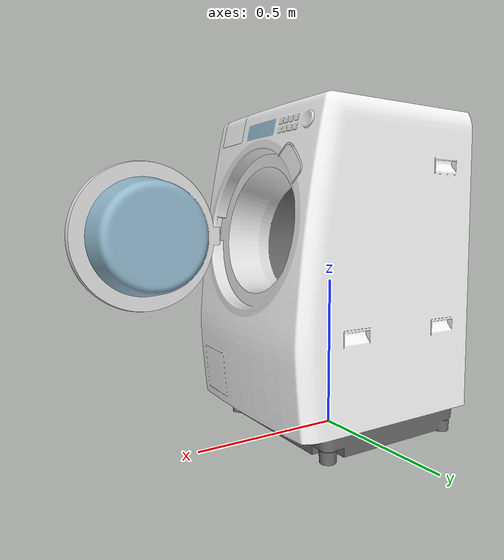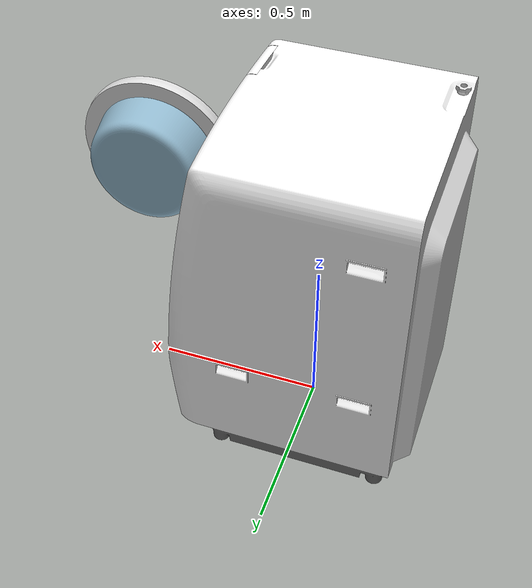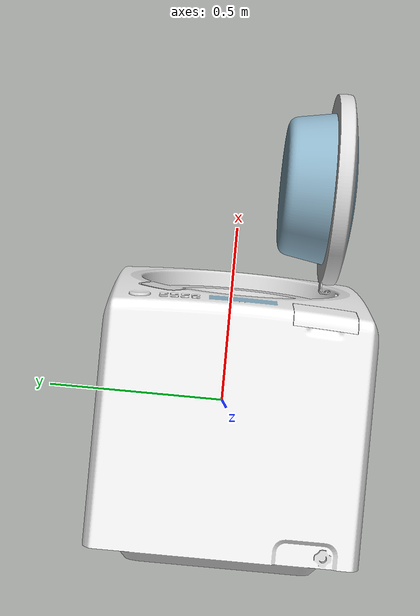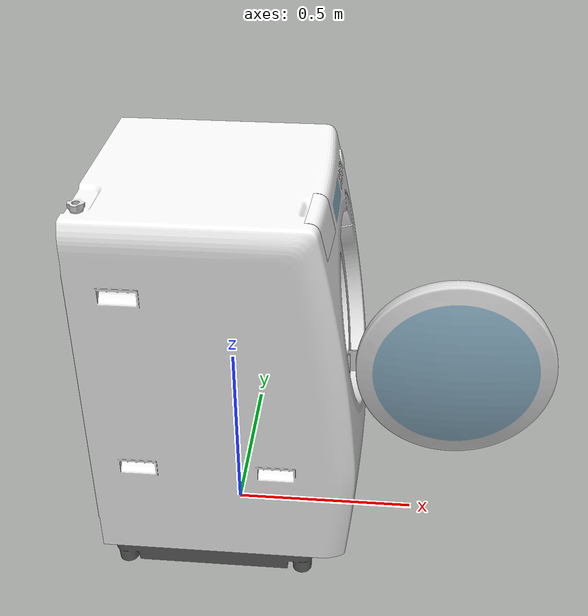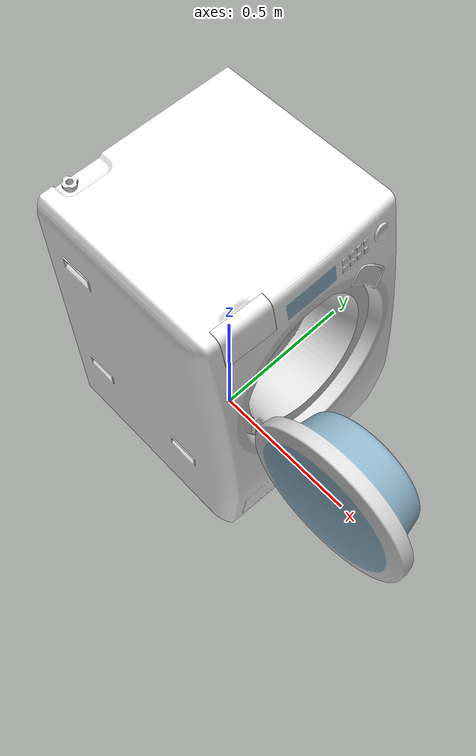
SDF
<?xml version="1.0" ?>
<sdf version="1.8">
  <model name="washing_machine">

    <!-- ── Body link ─────────────────────────────────────────────────────── -->
    <link name="body">
      <pose>0 0 0 0 0 0</pose>

      <inertial>
        <!-- Heavy appliance — effectively static once placed -->
        <mass>60.0</mass>
        <inertia>
          <ixx>8.0</ixx> <ixy>0</ixy> <ixz>0</ixz>
          <iyy>6.0</iyy> <iyz>0</iyz>
          <izz>5.0</izz>
        </inertia>
      </inertial>

      <collision name="body_collision">
        <geometry>
          <mesh>
            <uri>model://washing_machine/meshes/main-body_lod.stl</uri>
            <scale>0.001 0.001 0.001</scale>
          </mesh>
        </geometry>
        <surface>
          <friction>
            <ode><mu>0.9</mu><mu2>0.9</mu2></ode>
          </friction>
        </surface>
      </collision>

      <visual name="body_visual">
        <geometry>
          <mesh>
            <uri>model://washing_machine/meshes/main-body.dae</uri>
            <scale>1 1 1</scale>
          </mesh>
        </geometry>
      </visual>
    </link>

    <!-- ── Door link ─────────────────────────────────────────────────────── -->
    <link name="door">
      <!-- Initial pose = hinge position in model frame -->
      <pose>0.32 -0.22 0.65 0 0 -1.5708</pose>

      <inertial>
        <mass>3.0</mass>
        <inertia>
          <ixx>0.05</ixx> <ixy>0</ixy> <ixz>0</ixz>
          <iyy>0.02</iyy> <iyz>0</iyz>
          <izz>0.06</izz>
        </inertia>
      </inertial>

      <collision name="door_collision">
        <geometry>
          <mesh>
            <uri>model://washing_machine/meshes/door_lod.stl</uri>
            <scale>0.001 0.001 0.001</scale>
          </mesh>
        </geometry>
        <surface>
          <friction>
            <ode><mu>0.8</mu><mu2>0.8</mu2></ode>
          </friction>
        </surface>
      </collision>

      <visual name="door_visual">
        <geometry>
          <mesh>
            <uri>model://washing_machine/meshes/door.dae</uri>
            <scale>1 1 1</scale>
          </mesh>
        </geometry>
      </visual>
    </link>

    <!-- ── Door revolute joint ───────────────────────────────────────────── -->
    <joint name="door_hinge" type="revolute">
      <parent>body</parent>
      <child>door</child>
      <!-- Joint frame coincides with door link origin → pose = 0 relative to child -->
      <pose>0 0 0 0 0 0</pose>
      <axis>
        <!-- Rotate around Z (vertical) — door swings sideways (open away from robot) -->
        <xyz expressed_in="__model__">0 0 1</xyz>
        <limit>
          <lower>0</lower>
          <upper>1.7453</upper>  <!-- 100 degrees -->
          <effort>20.0</effort>
          <velocity>1.0</velocity>
        </limit>
        <dynamics>
          <damping>2.0</damping>
          <friction>1.5</friction>
          <spring_reference>0</spring_reference>
          <spring_stiffness>0</spring_stiffness>
        </dynamics>
      </axis>
    </joint>

    <!-- Tray mesh imported from ROS1 asset set -->
    <link name="tray">
      <!-- Place near front top-left of the body; tune after visual check -->
      <pose>0.0 -0.190 0.956 0 0 0</pose>

      <inertial>
        <mass>0.6</mass>
        <inertia>
          <ixx>0.001</ixx> <ixy>0</ixy> <ixz>0</ixz>
          <iyy>0.001</iyy> <iyz>0</iyz>
          <izz>0.001</izz>
        </inertia>
      </inertial>

      <collision name="tray_collision">
        <geometry>
          <mesh>
            <uri>model://washing_machine/meshes/tray_lod.stl</uri>
            <scale>0.001 0.001 0.001</scale>
          </mesh>
        </geometry>
      </collision>

      <visual name="tray_visual">
        <geometry>
          <mesh>
            <uri>model://washing_machine/meshes/tray.dae</uri>
            <scale>1 1 1</scale>
          </mesh>
        </geometry>
      </visual>
    </link>

    <joint name="tray_fixed" type="fixed">
      <parent>body</parent>
      <child>tray</child>
    </joint>

    <!-- Prevent the whole model from sliding on the floor -->
    <static>false</static>
    <self_collide>false</self_collide>

  </model>
</sdf>
